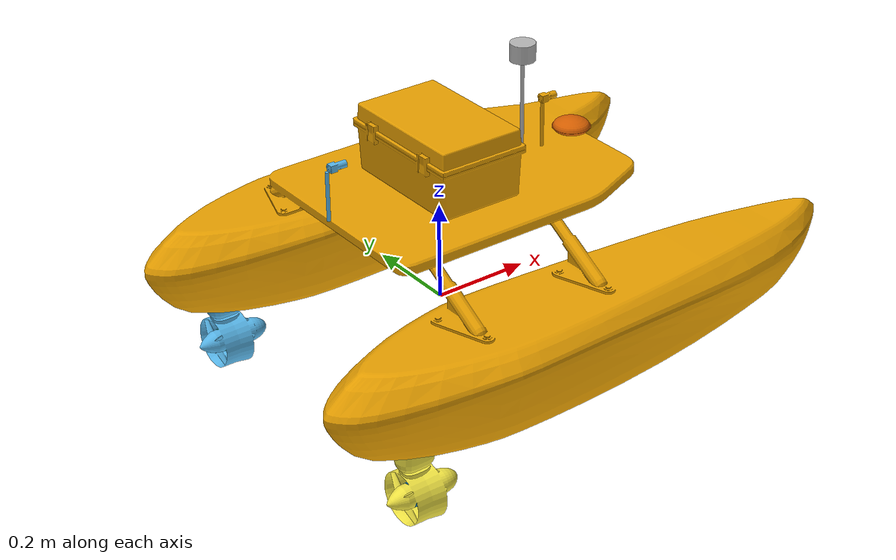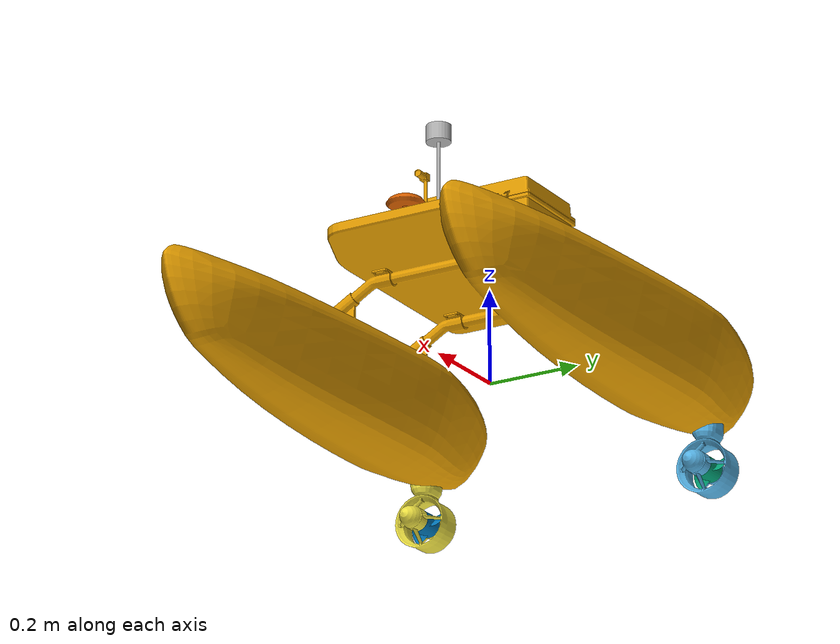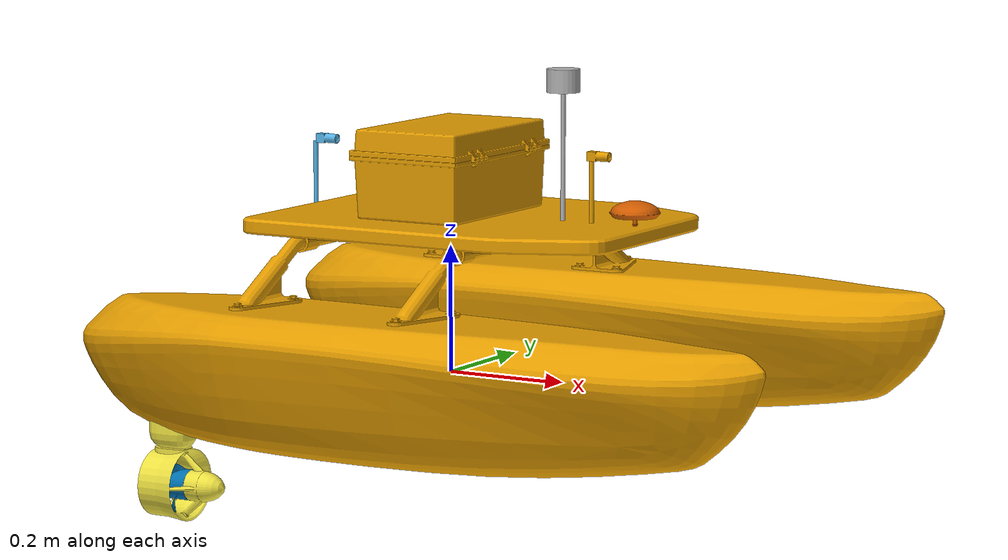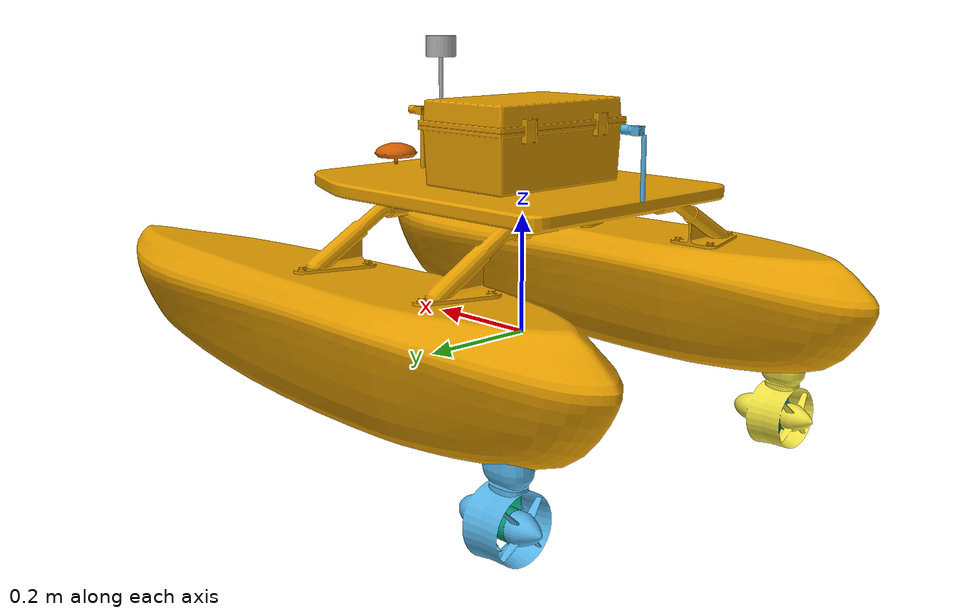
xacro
<?xml version="1.0"?>
<robot xmlns:xacro="http://ros.org/wiki/xacro" name="roboboat">

  <link name="base_link">

    <!-- Visual appearance of the roboboat object -->
    <visual name="visual_roboboat">
      <geometry>
        <mesh filename="file://$(find workspace_gz)/models/roboboat/meshes/roboboat.dae"/>
      </geometry>
    </visual>

    <!-- Inertia definition of the roboboat object -->
    <inertial>
      <origin xyz="0 0 -0.2" rpy="0 0 0"/>
      <mass value="10"/>
      <inertia
         ixx="0.5666666666666668" ixy="0" ixz="0"
         iyy="1.0416666666666667" iyz="0"
         izz="1.5416666666666667"/>
    </inertial>

    <!-- Collision area definition of the roboboat object -->
    <collision name="Box011">
      <origin xyz="0.110046 0.314338 0.0352701" rpy="0.0 0.0 0.0"/>
      <geometry>
        <box size="1.14985 0.223203 0.202172"/>
      </geometry>
    </collision>

    <!-- Collision area definition of the roboboat object -->
    <collision name="Box012">
      <origin xyz="0.110046 -0.31434 0.0352701" rpy="0.0 0.0 0.0"/>
      <geometry>
        <box size="1.14985 0.223203 0.202172"/>
      </geometry>
    </collision>

    <!-- Collision area definition of the roboboat object -->
    <collision name="Box013">
      <origin xyz="0.0549115 0.0 0.240029" rpy="0.0 0.0 0.0"/>
      <geometry>
        <box size="0.598409 0.459244 0.0260934"/>
      </geometry>
    </collision>

    <!-- Collision area definition of the roboboat object -->
    <collision name="Cylinder262">
      <origin xyz="-0.158378 0.290814 0.162712" rpy="1.0472 0.0 0.0"/>
      <geometry>
        <cylinder length="0.222664" radius="0.0222591"/>
      </geometry>
    </collision>

    <!-- Collision area definition of the roboboat object -->
    <collision name="Cylinder263">
      <origin xyz="-0.158378 -0.290814 0.162712" rpy="-1.0472 0.0 0.0"/>
      <geometry>
        <cylinder length="0.222664" radius="0.0222591"/>
      </geometry>
    </collision>

    <!-- Collision area definition of the roboboat object -->
    <collision name="Cylinder264">
      <origin xyz="0.12101 0.290814 0.162712" rpy="1.0472 0.0 0.0"/>
      <geometry>
        <cylinder length="0.222664" radius="0.0222591"/>
      </geometry>
    </collision>

    <!-- Collision area definition of the roboboat object -->
    <collision name="Cylinder265">
      <origin xyz="0.12101 -0.290814 0.162712" rpy="-1.0472 0.0 0.0"/>
      <geometry>
        <cylinder length="0.222664" radius="0.0222591"/>
      </geometry>
    </collision>

    <!-- Collision area definition of the roboboat object -->
    <collision name="Cylinder266">
      <origin xyz="0.12101 -0.000654578 0.21655" rpy="1.5708 0.0 0.0"/>
      <geometry>
        <cylinder length="0.409041" radius="0.0155011"/>
      </geometry>
    </collision>

    <!-- Collision area definition of the roboboat object -->
    <collision name="Cylinder267">
      <origin xyz="-0.15838 -0.000654578 0.21655" rpy="1.5708 0.0 0.0"/>
      <geometry>
        <cylinder length="0.409041" radius="0.0155011"/>
      </geometry>
    </collision>

    <!-- Visual appearance of the drybox object -->
    <visual name="visual_drybox">
      <origin xyz="0.0 0.0 0.25" rpy="0 0 0"/>
      <geometry>
        <mesh filename="file://$(find workspace_gz)/models/roboboat/sensors/drybox/meshes/drybox.dae"/>
      </geometry>
    </visual>

    <!-- Collision area definition of the drybox object -->
    <collision name="collision_drybox">
      <origin xyz="0 0 0.32" rpy="0 0 0"/>
      <geometry>
        <box size="0.2 0.3 0.15"/>
      </geometry>
    </collision>

  </link>

  <link name="left_housing_link">

    <!-- Visual appearance of the left propeller housing object -->
    <visual name="visual_left_housing">
      <geometry>
        <mesh filename="file://$(find workspace_gz)/models/roboboat/meshes/housing.dae"/>
      </geometry>
    </visual>

    <!-- Inertia definition of the left propeller housing object -->
    <inertial>
      <mass value="1.0"/>
      <inertia
        ixx="0.0020290833333333333" ixy="0.0" ixz="0.0"
        iyy="0.002408333333333333" iyz="0.0"
        izz="0.0006874166666666666" />
    </inertial>

    <!-- Visual appearance of the left mounting object -->
    <visual name="visual_left_mount">
      <origin xyz="0 0 -0.01" rpy="0 0 0"/>
      <geometry>
        <mesh filename="file://$(find workspace_gz)/models/roboboat/meshes/mount.dae"/>
      </geometry>
    </visual>

    <!-- Collision area definition of the left mounting object -->
    <collision name="Box011d">
      <origin xyz="0.0 0.0 0.100951" rpy="0 0 0"/>
      <geometry>
        <box size="0.0810453 0.0430519 0.070925"/>
      </geometry>
    </collision>

    <!-- Collision area definition of the left propeller housing object -->
    <collision name="Cylinder263d">
      <origin xyz="0.0166537 -0.00013299 0.0" rpy="1.5708 0  -1.5708"/>
      <geometry>
        <cylinder length="0.14376" radius="0.0243692"/>
      </geometry>
    </collision>

    <!-- Collision area definition of the left propeller housing object -->
    <collision name="Cylinder264d">
      <origin xyz="0.0 0.0 0.0628066" rpy="0 0 0"/>
      <geometry>
        <cylinder length="0.125613" radius="0.014703"/>
      </geometry>
    </collision>

  </link>

  <link name="left_prop_link">

    <!-- Visual appearance of the left propeller object -->
    <visual name="visual_left_prop">
      <geometry>
        <mesh filename="file://$(find workspace_gz)/models/roboboat/meshes/prop.dae"/>
      </geometry>
    </visual>

    <!-- Inertia definition of the left propeller object -->
    <inertial>
      <mass value="0.1"/>
      <inertia
        ixx="0.000105625" ixy="0.0" ixz="0.0"
        iyy="0.000105625" iyz="0.0"
        izz="0.00015125"/>
    </inertial>

    <!-- Collision area definition of the left propeller object -->
    <collision name="Cylinder262d">
      <origin xyz="0.0 0.0 0.0" rpy="1.5708 0.0 -1.5708"/>
      <geometry>
        <cylinder length="0.0608172" radius="0.0553844"/>
      </geometry>
    </collision>

  </link>

  <link name="right_housing_link">

    <!-- Visual appearance of the right propeller housing object -->
    <visual name="visual_right_housing">
      <geometry>
        <mesh filename="file://$(find workspace_gz)/models/roboboat/meshes/housing.dae"/>
      </geometry>
    </visual>

    <!-- Inertia definition of the right propeller housing object -->
    <inertial>
      <mass value="1.0"/>
      <inertia
        ixx="0.0020290833333333333" ixy="0.0" ixz="0.0"
        iyy="0.002408333333333333" iyz="0.0"
        izz="0.0006874166666666666" />
    </inertial>

    <!-- Visual appearance of the right mounting object -->
    <visual name="visual_right_mount">
      <origin xyz="0 0 -0.01" rpy="0 0 0"/>
      <geometry>
        <mesh filename="file://$(find workspace_gz)/models/roboboat/meshes/mount.dae"/>
      </geometry>
    </visual>

    <!-- Collision area definition of the right mounting object -->
    <collision name="Box011i">
      <origin xyz="0.0 0.0 0.100951" rpy="0 0 0"/>
      <geometry>
        <box size="0.0810453 0.0430519 0.070925"/>
      </geometry>
    </collision>

    <!-- Collision area definition of the right propeller housing object -->
    <collision name="Cylinder263i">
      <origin xyz="0.0166537 0.00013299 0.0" rpy="1.5708 0  -1.5708"/>
      <geometry>
        <cylinder length="0.14376" radius="0.0243692"/>
      </geometry>
    </collision>

    <!-- Collision area definition of the right propeller housing object -->
    <collision name="Cylinder264i">
      <origin xyz="0.0 0.0 0.0628066" rpy="0 0 0"/>
      <geometry>
        <cylinder length="0.125613" radius="0.014703"/>
      </geometry>
    </collision>

  </link>

  <link name="right_prop_link">

    <!-- Visual appearance of the right propeller object -->
    <visual name="visual_right_prop">
      <geometry>
        <mesh filename="file://$(find workspace_gz)/models/roboboat/meshes/prop.dae"/>
      </geometry>
    </visual>

    <!-- Inertia definition of the right propeller object -->
    <inertial>
      <mass value="0.1"/>
      <inertia
        ixx="0.000105625" ixy="0.0" ixz="0.0"
        iyy="0.000105625" iyz="0.0"
        izz="0.00015125"/>
    </inertial>

    <!-- Collision area definition of the right propeller object -->
    <collision name="Cylinder262i">
      <origin xyz="0.0 0.0 0.0" rpy="1.5708 0.0 -1.5708"/>
      <geometry>
        <cylinder length="0.0608172" radius="0.0553844"/>
      </geometry>
    </collision>

  </link>

  <link name="gps_link">

    <!-- Visual appearance of the GPS sensor -->
    <visual name="visual_gps">
      <geometry>
        <mesh filename="file://$(find workspace_gz)/models/roboboat/sensors/gps/meshes/gps.dae"/>
      </geometry>
    </visual>

    <!-- Collision area definition of the GPS sensor -->
    <collision name="collision_gps">
      <origin xyz="0.0 0.0 0.0275" rpy="0.0 0.0 0.0"/>
      <geometry>
        <cylinder length="0.0285" radius="0.04"/>
      </geometry>
    </collision>

  </link>

  <link name="imu_link">

  </link>

  <link name="lidar_link">

    <!-- Visual appearance of the LIDAR sensor -->
    <visual name="visual_lidar">
      <geometry>
        <mesh filename="file://$(find workspace_gz)/models/roboboat/sensors/lidar/meshes/lidar.dae"/>
      </geometry>
    </visual>

    <!-- Visual appearance of the LIDAR sensor post -->
    <visual name="visual_lidar_post">
      <geometry>
        <mesh filename="file://$(find workspace_gz)/models/roboboat/sensors/lidar_post/meshes/post.dae"/>
      </geometry>
    </visual>

    <!-- Collision area definition of the LIDAR sensor -->
    <collision name="collision_lidar">
      <origin xyz="0.0 0.0 0.0175" rpy="0.0 0.0 0.0"/>
      <geometry>
        <cylinder length="0.0375" radius="0.0275"/>
      </geometry>
    </collision>

    <!-- Collision area definition of the LIDAR sensor post -->
    <collision name="collision_lidar_post">
      <origin xyz="0.0 0.0 -0.1" rpy="0.0 0.0 0.0"/>
      <geometry>
        <cylinder length="0.225" radius="0.005"/>
      </geometry>
    </collision>

  </link>

  <link name="camera_link">

    <!-- Visual appearance of the CAMERA sensor -->
    <visual name="visual_camera">
      <origin xyz="-0.005 0.0 0.005" rpy="0 0 0"/>
      <geometry>
        <mesh filename="file://$(find workspace_gz)/models/roboboat/sensors/camera/meshes/camera.dae"/>
      </geometry>
    </visual>

    <!-- Visual appearance of the CAMERA sensor post -->
    <visual name="visual_camera_post">
      <origin xyz="0.0 0.0 0.0" rpy="0 0 0"/>
      <geometry>
        <mesh filename="file://$(find workspace_gz)/models/roboboat/sensors/camera_post/meshes/post.dae"/>
      </geometry>
    </visual>

    <!-- Collision area definition of the CAMERA sensor -->
    <collision name="collision_camera_1">
      <origin xyz="0.002 0.0 0.005" rpy="0 0 0"/>
      <geometry>
        <box size="0.0165 0.0165 0.0165"/>
      </geometry>
    </collision>

    <!-- Collision area definition of the CAMERA sensor -->
    <collision name="collision_camera_2">
      <origin xyz="0.02 0.0 0.005" rpy="0 1.5708 0"/>
      <geometry>
        <cylinder length="0.0225" radius="0.0075"/>
      </geometry>
    </collision>

    <!-- Collision area definition of the CAMERA sensor post -->
    <collision name="collision_camera_post">
      <origin xyz="0.0 0.0 -0.05" rpy="0.0 0.0 0.0"/>
      <geometry>
        <cylinder length="0.1" radius="0.005"/>
      </geometry>
    </collision>

  </link>

  <gazebo reference="gps_link">

    <!-- Definition of the GPS sensor -->
    <sensor name="sensor_gps" type="navsat">
      <always_on>1</always_on>
      <update_rate>20.0</update_rate>
    </sensor>

  </gazebo>

  <gazebo reference="imu_link">

    <!-- Definition of the IMU sensor -->
    <sensor name="sensor_imu" type="imu">
      <always_on>1</always_on>
      <update_rate>100.0</update_rate>
    </sensor>

  </gazebo>

  <gazebo reference="lidar_link">

    <!-- Definition of the LIDAR sensor -->
    <sensor name="sensor_lidar" type="gpu_ray">
      <pose>0.2 0.0 0.45 0 0 0</pose>
      <visualize>true</visualize>
      <update_rate>10</update_rate>
      <ray>
        <scan>
          <horizontal>
            <samples>360</samples>
            <resolution>1</resolution>
            <min_angle>-3.14</min_angle>
            <max_angle>3.14</max_angle>
          </horizontal>
        </scan>
        <range>
          <min>0.1</min>
          <max>30</max>
        </range>
      </ray>
    </sensor>

  </gazebo>

  <link name="camera_rear_link">

    <!-- Visual appearance of the rear CAMERA sensor -->
    <visual name="visual_camera">
      <origin xyz="-0.005 0.0 0.005" rpy="0 0 3.14159"/>
      <geometry>
        <mesh filename="file://$(find workspace_gz)/models/roboboat/sensors/camera/meshes/camera.dae"/>
      </geometry>
    </visual>

    <visual name="visual_camera_post">
      <origin xyz="0.0 0.0 0.0" rpy="0 0 0"/>
      <geometry>
        <mesh filename="file://$(find workspace_gz)/models/roboboat/sensors/camera_post/meshes/post.dae"/>
      </geometry>
    </visual>

    <collision name="collision_camera_1">
      <origin xyz="0.002 0.0 0.005" rpy="0 0 0"/>
      <geometry>
        <box size="0.0165 0.0165 0.0165"/>
      </geometry>
    </collision>

    <collision name="collision_camera_2">
      <origin xyz="0.02 0.0 0.005" rpy="0 1.5708 0"/>
      <geometry>
        <cylinder length="0.0225" radius="0.0075"/>
      </geometry>
    </collision>

    <collision name="collision_camera_post">
      <origin xyz="0.0 0.0 -0.05" rpy="0.0 0.0 0.0"/>
      <geometry>
        <cylinder length="0.1" radius="0.005"/>
      </geometry>
    </collision>

  </link>

  <gazebo reference="camera_link">

    <!-- Definition of the forward CAMERA sensor -->
    <sensor name='sensor_camera' type='camera'>
      <camera name='front_camera'>
        <horizontal_fov>1.3962634</horizontal_fov>
        <image>
          <width>1280</width>
          <height>720</height>
          <format>R8G8B8</format>
        </image>
        <clip>
          <near>0.050000000000000003</near>
          <far>400</far>
        </clip>
      </camera>
    </sensor>

  </gazebo>

  <gazebo reference="camera_rear_link">

    <!-- Definition of the rear CAMERA sensor (docking / reverse approach) -->
    <sensor name='sensor_camera_rear' type='camera'>
      <camera name='rear_camera'>
        <horizontal_fov>1.3962634</horizontal_fov>
        <image>
          <width>1280</width>
          <height>720</height>
          <format>R8G8B8</format>
        </image>
        <clip>
          <near>0.050000000000000003</near>
          <far>400</far>
        </clip>
      </camera>
    </sensor>

  </gazebo>

  <gazebo>
    <plugin
      filename="gz-sim-thruster-system"
      name="gz::sim::systems::Thruster">
      <joint_name>left_housing_link_to_left_prop_link</joint_name>
      <thrust_coefficient>0.1</thrust_coefficient>
      <fluid_density>1025</fluid_density>
      <propeller_diameter>0.1</propeller_diameter>
      <velocity_control>false</velocity_control>
    </plugin>

    <plugin
      filename="gz-sim-thruster-system"
      name="gz::sim::systems::Thruster">
      <joint_name>right_housing_link_to_right_prop_link</joint_name>
      <thrust_coefficient>0.1</thrust_coefficient>
      <fluid_density>1025</fluid_density>
      <propeller_diameter>0.1</propeller_diameter>
      <velocity_control>false</velocity_control>
    </plugin>

    <plugin
      filename="libSurface.so"
      name="vrx::Surface">
      <link_name>base_link</link_name>
      <hull_length>1.15</hull_length>
      <hull_radius>0.12</hull_radius>
      <fluid_level>0.075</fluid_level>
      <points>
        <point>0.68 0.314338 0.0352701</point>
        <point>-0.465 0.314338 0.0352701</point>
      </points>
      <wavefield>
        <topic>/vrx/wavefield/parameters</topic>
      </wavefield>
    </plugin>

    <plugin
      filename="libSurface.so"
      name="vrx::Surface">
      <link_name>base_link</link_name>
      <hull_length>1.15</hull_length>
      <hull_radius>0.12</hull_radius>
      <fluid_level>0.075</fluid_level>
      <points>
        <point>0.68 -0.314338 0.0352701</point>
        <point>-0.465 -0.314338 0.0352701</point>
      </points>
      <wavefield>
        <topic>/vrx/wavefield/parameters</topic>
      </wavefield>
    </plugin>

    <plugin
      filename="libSimpleHydrodynamics.so"
      name="vrx::SimpleHydrodynamics">
      <link_name>base_link</link_name>

      <xDotU>0.0</xDotU>
      <yDotV>0.0</yDotV>
      <nDotR>0.0</nDotR>

      <xU>4.0</xU>
      <xUU>6.0</xUU>
      <yV>4.0</yV>
      <yVV>4.0</yVV>
      <zW>20.0</zW>
      <kP>12.0</kP>
      <kPP>24.0</kPP>
      <mQ>36.0</mQ>
      <mQQ>35.0</mQQ>
      <nR>32.0</nR>
      <nRR>32.0</nRR>
    </plugin>

  </gazebo>

  <joint name="base_link_to_gps_link" type="fixed">
    <origin xyz="0.325 0 0.25" rpy="0 0 0"/>
    <parent link="base_link"/>
    <child  link="gps_link"/>
  </joint>

  <joint name="base_link_to_imu_link" type="fixed">
    <origin xyz="0.325 0 0.25" rpy="0 0 0"/>
    <parent link="base_link"/>
    <child  link="imu_link"/>
  </joint>

  <joint name="base_link_to_lidar_link" type="fixed">
    <origin xyz="0.2 0.0 0.45" rpy="0 0 0"/>
    <parent link="base_link"/>
    <child  link="lidar_link"/>
  </joint>

  <joint name="base_link_to_camera_link" type="fixed">
    <origin xyz="0.25 0.0 0.35" rpy="0 0 0"/>
    <parent link="base_link"/>
    <child  link="camera_link"/>
  </joint>

  <joint name="base_link_to_camera_rear_link" type="fixed">
    <origin xyz="-0.25 0.0 0.35" rpy="0 0 3.14159"/>
    <parent link="base_link"/>
    <child  link="camera_rear_link"/>
  </joint>

  <joint name="base_link_to_left_housing_link" type="fixed">
    <origin xyz="-0.3 0.33 -0.15" rpy="0 0 0"/>
    <parent link="base_link"/>
    <child  link="left_housing_link"/>
  </joint>

  <joint name="left_housing_link_to_left_prop_link" type="revolute">
    <origin xyz="0 0 0" rpy="0 0 0"/>
    <parent link="left_housing_link"/>
    <child link="left_prop_link"/>
    <axis xyz="1 0 0"/>
    <limit effort="10" velocity="10" lower="-3.14" upper="3.14"/>
    <dynamics damping="0.01" friction="0.01"/>
  </joint>

  <joint name="base_link_to_right_housing_link" type="fixed">
    <origin xyz="-0.3 -0.33 -0.15" rpy="0 0 0"/>
    <parent link="base_link"/>
    <child  link="right_housing_link"/>
  </joint>

  <joint name="right_housing_link_to_right_prop_link" type="revolute">
    <origin xyz="0 0 0" rpy="0 0 0"/>
    <parent link="right_housing_link"/>
    <child link="right_prop_link"/>
    <axis xyz="1 0 0"/>
    <limit effort="10" velocity="10" lower="-3.14" upper="3.14"/>
    <dynamics damping="0.01" friction="0.01"/>
  </joint>

</robot>
